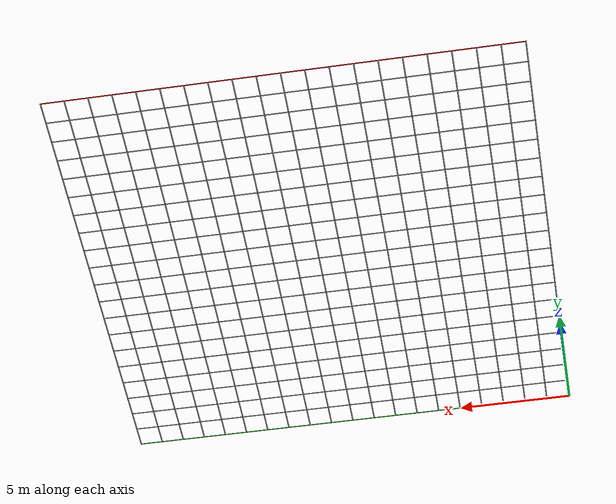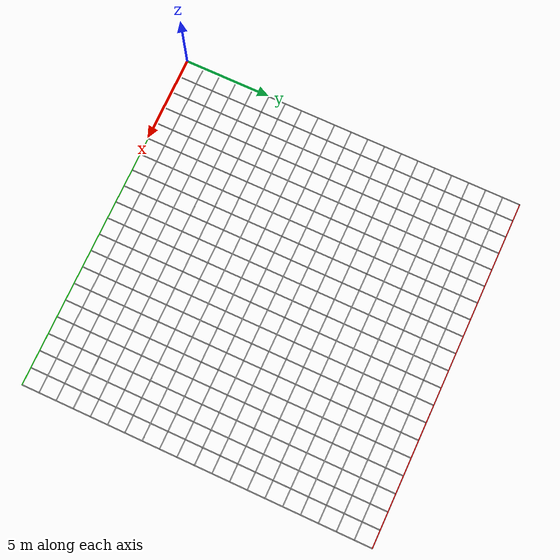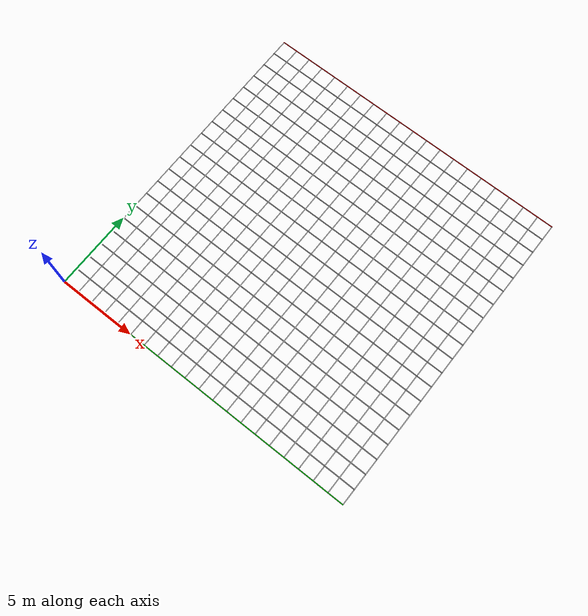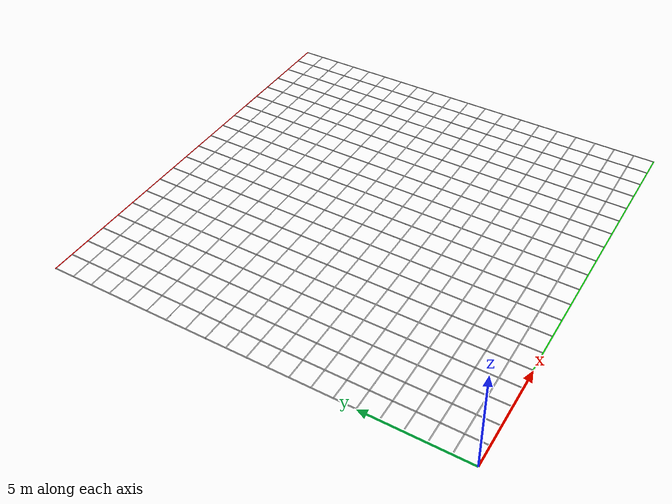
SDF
<?xml version='1.0'?>
<sdf version='1.6'>
<model name='tape_court'>
  <static>true</static>

  <!-- columns -->

  <include>
    <uri>model://tape_strip</uri>
    <pose>0.025 10.025 0.0 0.0 0.0 1.5707963267948966</pose>
  </include>

  <include>
    <uri>model://tape_strip</uri>
    <pose>1.025 10.025 0.0 0.0 0.0 1.5707963267948966</pose>
  </include>

  <include>
    <uri>model://tape_strip</uri>
    <pose>2.025 10.025 0.0 0.0 0.0 1.5707963267948966</pose>
  </include>

  <include>
    <uri>model://tape_strip</uri>
    <pose>3.025 10.025 0.0 0.0 0.0 1.5707963267948966</pose>
  </include>

  <include>
    <uri>model://tape_strip</uri>
    <pose>4.025 10.025 0.0 0.0 0.0 1.5707963267948966</pose>
  </include>

  <include>
    <uri>model://tape_strip</uri>
    <pose>5.025 10.025 0.0 0.0 0.0 1.5707963267948966</pose>
  </include>

  <include>
    <uri>model://tape_strip</uri>
    <pose>6.025 10.025 0.0 0.0 0.0 1.5707963267948966</pose>
  </include>

  <include>
    <uri>model://tape_strip</uri>
    <pose>7.025 10.025 0.0 0.0 0.0 1.5707963267948966</pose>
  </include>

  <include>
    <uri>model://tape_strip</uri>
    <pose>8.025 10.025 0.0 0.0 0.0 1.5707963267948966</pose>
  </include>

  <include>
    <uri>model://tape_strip</uri>
    <pose>9.025 10.025 0.0 0.0 0.0 1.5707963267948966</pose>
  </include>

  <include>
    <uri>model://tape_strip</uri>
    <pose>10.025 10.025 0.0 0.0 0.0 1.5707963267948966</pose>
  </include>

  <include>
    <uri>model://tape_strip</uri>
    <pose>11.025 10.025 0.0 0.0 0.0 1.5707963267948966</pose>
  </include>

  <include>
    <uri>model://tape_strip</uri>
    <pose>12.025 10.025 0.0 0.0 0.0 1.5707963267948966</pose>
  </include>

  <include>
    <uri>model://tape_strip</uri>
    <pose>13.025 10.025 0.0 0.0 0.0 1.5707963267948966</pose>
  </include>

  <include>
    <uri>model://tape_strip</uri>
    <pose>14.025 10.025 0.0 0.0 0.0 1.5707963267948966</pose>
  </include>

  <include>
    <uri>model://tape_strip</uri>
    <pose>15.025 10.025 0.0 0.0 0.0 1.5707963267948966</pose>
  </include>

  <include>
    <uri>model://tape_strip</uri>
    <pose>16.025 10.025 0.0 0.0 0.0 1.5707963267948966</pose>
  </include>

  <include>
    <uri>model://tape_strip</uri>
    <pose>17.025 10.025 0.0 0.0 0.0 1.5707963267948966</pose>
  </include>

  <include>
    <uri>model://tape_strip</uri>
    <pose>18.025 10.025 0.0 0.0 0.0 1.5707963267948966</pose>
  </include>

  <include>
    <uri>model://tape_strip</uri>
    <pose>19.025 10.025 0.0 0.0 0.0 1.5707963267948966</pose>
  </include>

  <include>
    <uri>model://tape_strip</uri>
    <pose>20.025 10.025 0.0 0.0 0.0 1.5707963267948966</pose>
  </include>

  <!-- rows -->

  <include>
    <uri>model://tape_strip_green</uri>
    <pose>10.025 0.025 0.0003 0.0 0.0 3.141592653589793</pose>
  </include>

  <include>
    <uri>model://tape_strip</uri>
    <pose>10.025 1.025 0.0 0.0 0.0 3.141592653589793</pose>
  </include>

  <include>
    <uri>model://tape_strip</uri>
    <pose>10.025 2.025 0.0 0.0 0.0 3.141592653589793</pose>
  </include>

  <include>
    <uri>model://tape_strip</uri>
    <pose>10.025 3.025 0.0 0.0 0.0 3.141592653589793</pose>
  </include>

  <include>
    <uri>model://tape_strip</uri>
    <pose>10.025 4.025 0.0 0.0 0.0 3.141592653589793</pose>
  </include>

  <include>
    <uri>model://tape_strip</uri>
    <pose>10.025 5.025 0.0 0.0 0.0 3.141592653589793</pose>
  </include>

  <include>
    <uri>model://tape_strip</uri>
    <pose>10.025 6.025 0.0 0.0 0.0 3.141592653589793</pose>
  </include>

  <include>
    <uri>model://tape_strip</uri>
    <pose>10.025 7.025 0.0 0.0 0.0 3.141592653589793</pose>
  </include>

  <include>
    <uri>model://tape_strip</uri>
    <pose>10.025 8.025 0.0 0.0 0.0 3.141592653589793</pose>
  </include>

  <include>
    <uri>model://tape_strip</uri>
    <pose>10.025 9.025 0.0 0.0 0.0 3.141592653589793</pose>
  </include>

  <include>
    <uri>model://tape_strip</uri>
    <pose>10.025 10.025 0.0 0.0 0.0 3.141592653589793</pose>
  </include>

  <include>
    <uri>model://tape_strip</uri>
    <pose>10.025 11.025 0.0 0.0 0.0 3.141592653589793</pose>
  </include>

  <include>
    <uri>model://tape_strip</uri>
    <pose>10.025 12.025 0.0 0.0 0.0 3.141592653589793</pose>
  </include>

  <include>
    <uri>model://tape_strip</uri>
    <pose>10.025 13.025 0.0 0.0 0.0 3.141592653589793</pose>
  </include>

  <include>
    <uri>model://tape_strip</uri>
    <pose>10.025 14.025 0.0 0.0 0.0 3.141592653589793</pose>
  </include>

  <include>
    <uri>model://tape_strip</uri>
    <pose>10.025 15.025 0.0 0.0 0.0 3.141592653589793</pose>
  </include>

  <include>
    <uri>model://tape_strip</uri>
    <pose>10.025 16.025 0.0 0.0 0.0 3.141592653589793</pose>
  </include>

  <include>
    <uri>model://tape_strip</uri>
    <pose>10.025 17.025 0.0 0.0 0.0 3.141592653589793</pose>
  </include>

  <include>
    <uri>model://tape_strip</uri>
    <pose>10.025 18.025 0.0 0.0 0.0 3.141592653589793</pose>
  </include>

  <include>
    <uri>model://tape_strip</uri>
    <pose>10.025 19.025 0.0 0.0 0.0 3.141592653589793</pose>
  </include>

  <include>
    <uri>model://tape_strip_red</uri>
    <pose>10.025 20.025 0.0003 0.0 0.0 3.141592653589793</pose>
  </include>

</model>
</sdf>

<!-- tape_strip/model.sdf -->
<sdf version='1.6'>
<model name='tape_strip'>
  <static>true</static>
  <link name="tape">
    <visual name="tape">
      <geometry>
        <box>
          <!-- IARC Mission 7A Arena tape -->
          <!-- (20m + 5cm) x 5cm x 0.3mm -->
          <!-- 0.3mm ~ 12 mils ~ duct tape thickness -->
          <!-- For more detail, see https://github.com/redbirdrobotics/corvus/raw/bd86581eacb976aad8b599dfbe0c9c6f48c775e6/docs/iarc_mission7a_arena_layout.jpg -->
          <size>20.05 0.05 0.0003</size>
        </box>
      </geometry>
    </visual>
  </link>
</model>
</sdf>

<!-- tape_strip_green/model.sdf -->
<sdf version='1.6'>
<model name='tape_strip_green'>
  <static>true</static>
  <link name="tape">
    <visual name="tape">
      <geometry>
        <box>
          <!-- IARC Mission 7A Arena tape -->
          <!-- (20m + 5cm) x 5cm x 0.3mm -->
          <!-- 0.3mm ~ 12 mils ~ duct tape thickness -->
          <!-- For more detail, see https://github.com/redbirdrobotics/corvus/raw/bd86581eacb976aad8b599dfbe0c9c6f48c775e6/docs/iarc_mission7a_arena_layout.jpg -->
          <size>20.05 0.05 0.0003</size>
        </box>
      </geometry>
      <material>
        <ambient>0 1 0 1</ambient>
        <diffuse>0 1 0 1</diffuse>
        <specular>0 1 0 1</specular>
      </material>
    </visual>
  </link>
</model>
</sdf>

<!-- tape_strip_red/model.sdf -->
<sdf version='1.6'>
<model name='tape_strip_red'>
  <static>true</static>
  <link name="tape">
    <visual name="tape">
      <geometry>
        <box>
          <!-- IARC Mission 7A Arena tape -->
          <!-- (20m + 5cm) x 5cm x 0.3mm -->
          <!-- 0.3mm ~ 12 mils ~ duct tape thickness -->
          <!-- For more detail, see https://github.com/redbirdrobotics/corvus/raw/bd86581eacb976aad8b599dfbe0c9c6f48c775e6/docs/iarc_mission7a_arena_layout.jpg -->
          <size>20.05 0.05 0.0003</size>
        </box>
      </geometry>
      <material>
        <ambient>1 0 0 1</ambient>
        <diffuse>1 0 0 1</diffuse>
        <specular>1 0 0 1</specular>
      </material>
    </visual>
  </link>
</model>
</sdf>
